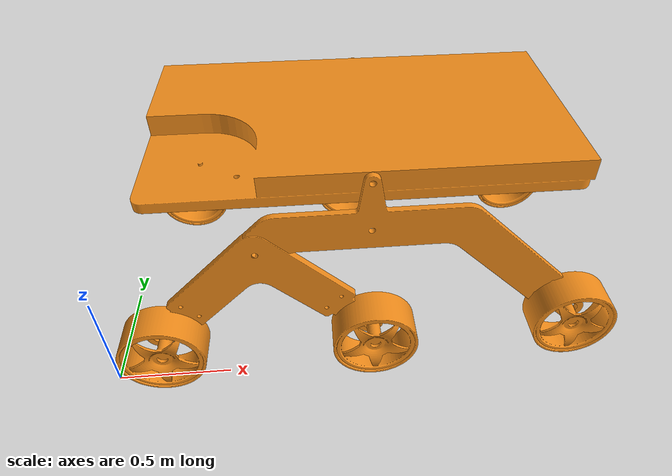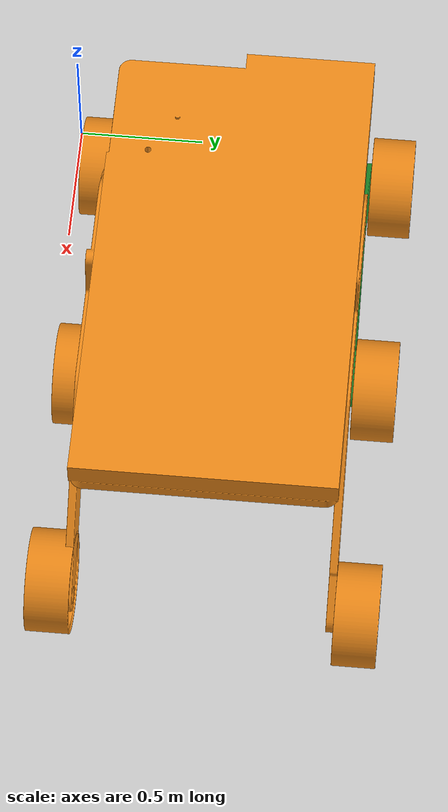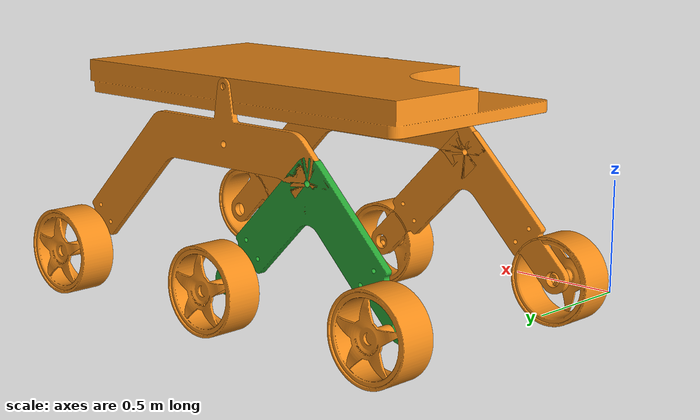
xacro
<?xml version="1.0"?>
<robot xmlns:xacro="http://www.ros.org/wiki/xacro" name="rover">
    <xacro:property name="PI" value="3.14159"/>
    <xacro:property name="effort" value="30"/>
    <xacro:property name="velocity" value="10"/>

    <xacro:macro name="inertia_wheel">
        <inertial>
            <origin xyz="0 0 0" rpy="0 0 0"/>
            <mass value="3"/>
            <inertia ixx="1" ixy="0" ixz="0" iyy="1" iyz="0" izz="1"/>
        </inertial>

    </xacro:macro>
    <xacro:macro name="base_plate">
        <inertial>
            <origin xyz="0 0 0" rpy="0 0 0"/>
            <mass value="20"/>
            <inertia ixx="1" ixy="0" ixz="0" iyy="1" iyz="0" izz="1"/>
        </inertial>

    </xacro:macro>
    <xacro:macro name="rocker">
        <inertial>
            <origin xyz="0 0 0" rpy="0 0 0"/>
            <mass value="10"/>
            <inertia ixx="1" ixy="0" ixz="0" iyy="1" iyz="0" izz="1"/>
        </inertial>

    </xacro:macro>
    <xacro:macro name="bogie">
        <inertial>
            <origin xyz="0 0 0" rpy="0 0 0"/>
            <mass value="9"/>
            <inertia ixx="1" ixy="0" ixz="0" iyy="1" iyz="0" izz="1"/>
        </inertial>

    </xacro:macro>

    <link name="base_link">

        <visual>
            <origin xyz="0.2 0.2 0.8" rpy="0 0 0"/>
            <geometry>
                <mesh filename="package://rover_description/meshes/Plate.STL" scale="0.01 0.01 0.01"/>

            </geometry>
        </visual>
        <collision>
            <origin xyz="0.2 0.2 0.8" rpy="0 0 0"/>
            <geometry>
                <mesh filename="package://rover_description/meshes/Plate.STL" scale="0.01 0.01 0.01"/>

            </geometry>

        </collision>
        <xacro:base_plate/>

    </link>
    <link name="rocker_right">

        <visual>
            <origin xyz="-0.61 0 -0.8" rpy="${PI/2} 0 0"/>
            <geometry>
                <mesh filename="package://rover_description/meshes/Rocker.STL" scale="0.01 0.01 0.01"/>

            </geometry>
        </visual>
        <collision>
            <origin xyz="-0.61 0 -0.8" rpy="${PI/2} 0 0"/>
            <geometry>
                <mesh filename="package://rover_description/meshes/Rocker.STL" scale="0.01 0.01 0.01"/>

            </geometry>

        </collision>
        <xacro:rocker/>

    </link>
    <link name="rocker_left">

        <visual>
            <origin xyz="-0.61 0 -0.8" rpy="${PI/2} 0 0"/>
            <geometry>
                <mesh filename="package://rover_description/meshes/Rocker.STL" scale="0.01 0.01 0.01"/>

            </geometry>
        </visual>
        <collision>
            <origin xyz="-0.61 0 -0.8" rpy="${PI/2} 0 0"/>
            <geometry>
                <mesh filename="package://rover_description/meshes/Rocker.STL" scale="0.01 0.01 0.01"/>

            </geometry>

        </collision>
        <xacro:rocker/>

    </link>
    <link name="bogie_right">

        <visual>
            <origin xyz="-0.6 0 -0.6" rpy="${PI/2} 0 0"/>
            <geometry>
                <mesh filename="package://rover_description/meshes/Bogie.STL" scale="0.01 0.01 0.01"/>

            </geometry>
        </visual>
        <collision>
            <origin xyz="-0.6 0 -0.6" rpy="${PI/2} 0 0"/>
            <geometry>
                <mesh filename="package://rover_description/meshes/Bogie.STL" scale="0.01 0.01 0.01"/>

            </geometry>

        </collision>
        <xacro:bogie/>

    </link>
    <link name="bogie_left">

        <visual>
            <origin xyz="-0.6 0 -0.6" rpy="${PI/2} 0 0"/>
            <geometry>
                <mesh filename="package://rover_description/meshes/Bogie.STL" scale="0.01 0.01 0.01"/>

            </geometry>
        </visual>
        <collision>
            <origin xyz="-0.6 0 -0.6" rpy="${PI/2} 0 0"/>
            <geometry>
                <mesh filename="package://rover_description/meshes/Bogie.STL" scale="0.01 0.01 0.01"/>

            </geometry>

        </collision>
        <xacro:bogie/>

    </link>
    <link name="wheel1">

        <visual>
            <origin xyz="-0.2 0 -0.2" rpy="${PI/2} 0 0"/>
            <geometry>
                <mesh filename="package://rover_description/meshes/Wheel.STL" scale="0.01 0.01 0.01"/>

            </geometry>
        </visual>
        <collision>
            <origin xyz="-0.2 0 -0.2" rpy="${PI/2} 0 0"/>
            <geometry>
                <mesh filename="package://rover_description/meshes/Wheel.STL" scale="0.01 0.01 0.01"/>

            </geometry>

        </collision>
        <xacro:inertia_wheel/>

    </link>
    <link name="wheel2">

        <visual>
            <origin xyz="-0.2 0 -0.2" rpy="${PI/2} 0 0"/>
            <geometry>
                <mesh filename="package://rover_description/meshes/Wheel.STL" scale="0.01 0.01 0.01"/>

            </geometry>
        </visual>
        <collision>
            <origin xyz="-0.2 0 -0.2" rpy="${PI/2} 0 0"/>
            <geometry>
                <mesh filename="package://rover_description/meshes/Wheel.STL" scale="0.01 0.01 0.01"/>

            </geometry>

        </collision>
        <xacro:inertia_wheel/>

    </link>
    <link name="wheel3">

        <visual>
            <origin xyz="-0.2 0 -0.2" rpy="${PI/2} 0 0"/>
            <geometry>
                <mesh filename="package://rover_description/meshes/Wheel.STL" scale="0.01 0.01 0.01"/>

            </geometry>
        </visual>
        <collision>
            <origin xyz="-0.2 0 -0.2" rpy="${PI/2} 0 0"/>
            <geometry>
                <mesh filename="package://rover_description/meshes/Wheel.STL" scale="0.01 0.01 0.01"/>

            </geometry>

        </collision>
        <xacro:inertia_wheel/>

    </link>
    <link name="wheel4">

        <visual>
            <origin xyz="-0.2 0 0.2" rpy="-${PI/2} 0 0"/>
            <geometry>
                <mesh filename="package://rover_description/meshes/Wheel.STL" scale="0.01 0.01 0.01"/>

            </geometry>
        </visual>
        <collision>
            <origin xyz="-0.2 0 0.2" rpy="-${PI/2} 0 0"/>
            <geometry>
                <mesh filename="package://rover_description/meshes/Wheel.STL" scale="0.01 0.01 0.01"/>

            </geometry>

        </collision>
        <xacro:inertia_wheel/>

    </link>
    <link name="wheel5">

        <visual>
            <origin xyz="-0.2 0 0.2" rpy="-${PI/2} 0 0"/>
            <geometry>
                <mesh filename="package://rover_description/meshes/Wheel.STL" scale="0.01 0.01 0.01"/>

            </geometry>
        </visual>
        <collision>
            <origin xyz="-0.2 0 0.2" rpy="-${PI/2} 0 0"/>
            <geometry>
                <mesh filename="package://rover_description/meshes/Wheel.STL" scale="0.01 0.01 0.01"/>

            </geometry>

        </collision>
        <xacro:inertia_wheel/>

    </link>
    <link name="wheel6">

        <visual>
            <origin xyz="-0.2 0 0.2" rpy="-${PI/2} 0 0"/>
            <geometry>
                <mesh filename="package://rover_description/meshes/Wheel.STL" scale="0.01 0.01 0.01"/>

            </geometry>
        </visual>
        <collision>
            <origin xyz="-0.2 0 0.2" rpy="-${PI/2} 0 0"/>
            <geometry>
                <mesh filename="package://rover_description/meshes/Wheel.STL" scale="0.01 0.01 0.01"/>

            </geometry>

        </collision>
        <xacro:inertia_wheel/>

    </link>

    <joint name="plate_to_rocker_right" type="fixed">
        <parent link="base_link"/>
        <child link="rocker_right"/>
        <origin rpy="0 0 0" xyz="1.15 0.2 0.8"/>

    </joint>
    <joint name="plate_to_rocker_left" type="fixed">
        <parent link="base_link"/>
        <child link="rocker_left"/>
        <origin rpy="0 0 0" xyz="1.15 1.21 0.8"/>

    </joint>
    <joint name="rocker_right_to_bogie" type="revolute">
        <parent link="rocker_right"/>
        <child link="bogie_right"/>
        <origin rpy="0 0 0" xyz="-0.45 0 -0.2"/>
        <axis xyz="0 1 0"/>
        <limit lower="-${PI/2}" upper="${PI/2}" effort="${effort}" velocity="${velocity}"/>

    </joint>
    <joint name="rocker_left_to_bogie" type="revolute">
        <parent link="rocker_left"/>
        <child link="bogie_left"/>
        <origin rpy="0 0 0" xyz="-0.45 0 -0.2"/>
        <axis xyz="0 1 0"/>
        <limit lower="-${PI/2}" upper="${PI/2}" effort="${effort}" velocity="${velocity}"/>

    </joint>
    <joint name="wheel1_joint" type="continuous">
        <parent link="bogie_right"/>
        <child link="wheel1"/>
        <origin rpy="0 0 0" xyz="-0.51 0 -0.55"/>
        <axis xyz="0 1 0"/>

    </joint>
    <joint name="wheel2_joint" type="continuous">
        <parent link="bogie_right"/>
        <child link="wheel2"/>
        <origin rpy="0 0 0" xyz="0.48 0 -0.55"/>
        <axis xyz="0 1 0"/>

    </joint>
    <joint name="wheel3_joint" type="continuous">
        <parent link="rocker_right"/>
        <child link="wheel3"/>
        <origin rpy="0 0 0" xyz="0.98 0 -0.7"/>
        <axis xyz="0 1 0"/>

    </joint>
    <joint name="wheel4_joint" type="continuous">
        <parent link="bogie_left"/>
        <child link="wheel4"/>
        <origin rpy="0 0 0" xyz="-0.51 0 -0.55"/>
        <axis xyz="0 1 0"/>

    </joint>
    <joint name="wheel5_joint" type="continuous">
        <parent link="bogie_left"/>
        <child link="wheel5"/>
        <origin rpy="0 0 0" xyz="0.45 0 -0.55"/>
        <axis xyz="0 1 0"/>

    </joint>
    <joint name="wheel6_joint" type="continuous">
        <parent link="rocker_left"/>
        <child link="wheel6"/>
        <origin rpy="0 0 0" xyz="1.0 0 -0.75"/>
        <axis xyz="0 1 0"/>

    </joint>

  <!-- Load the Gazebo ROS control plugin -->
    <gazebo>
    <plugin name="rover_diff_drive_controller" filename="libgazebo_ros_diff_drive.so">

        <rightJoint>wheel2_joint</rightJoint>
        <leftJoint>wheel5_joint</leftJoint>
  <!-- Right middle wheel joint -->
      <wheelSeparation>1</wheelSeparation> <!-- Distance between wheels -->
      <wheelRadius>0.2</wheelRadius> <!-- Radius of wheels -->
      <publishWheelJointState>true</publishWheelJointState>
      <legacyMode>false</legacyMode>
       <!-- Update rate for the controller -->
       <commandTopic>cmd_vel</commandTopic>

      <robotBaseFrame>base_link</robotBaseFrame> <!-- Base frame of the rover -->
    </plugin>
    </gazebo>

    <gazebo reference="base_link">
        <material>Gazebo/Orange</material>
    </gazebo>
    <gazebo reference="rocker_right">
        <material>Gazebo/Orange</material>
    </gazebo>
    <gazebo reference="rocker_left">
        <material>Gazebo/Orange</material>
    </gazebo>
    <gazebo reference="bogie_right">
        <material>Gazebo/Orange</material>
    </gazebo>
    <gazebo reference="bogie_left">
        <material>Gazebo/Green</material>
    </gazebo>
    <gazebo reference="wheel1">
        <material>Gazebo/Orange</material>
    </gazebo>
    <gazebo reference="wheel2">
        <material>Gazebo/Orange</material>
    </gazebo>
    <gazebo reference="wheel3">
        <material>Gazebo/Orange</material>
    </gazebo>
    <gazebo reference="wheel4">
        <material>Gazebo/Orange</material>
    </gazebo>
    <gazebo reference="wheel5">
        <material>Gazebo/Orange</material>
    </gazebo>
    <gazebo reference="wheel6">
        <material>Gazebo/Orange</material>
    </gazebo>

    </robot>
